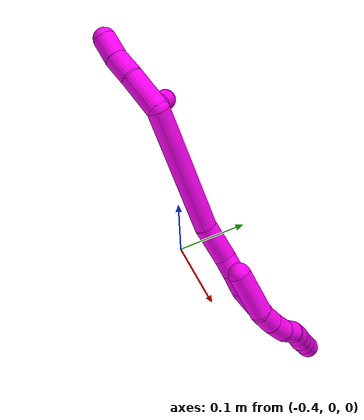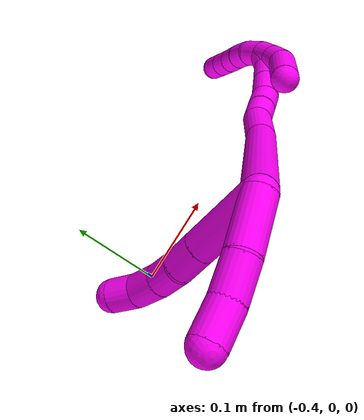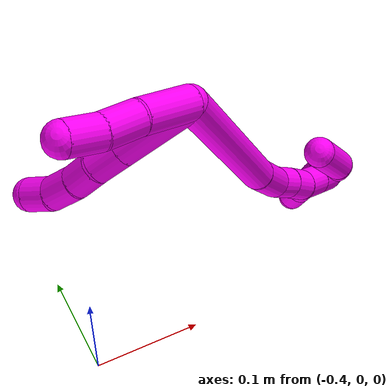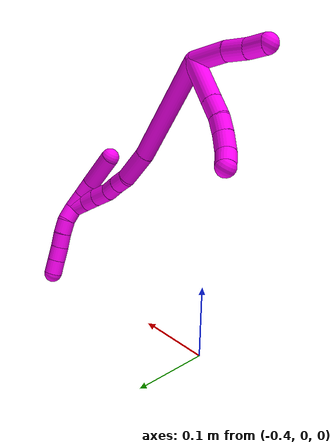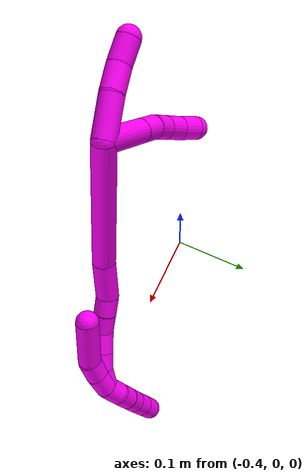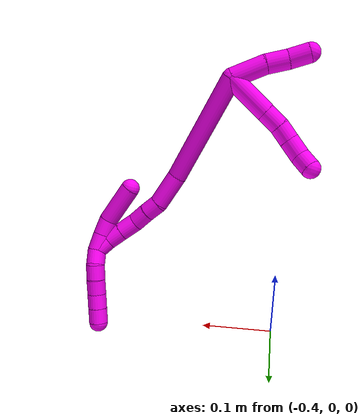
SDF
<sdf version="1.7">
 <world name="default">
  <model name="10">
   <static>0</static>
   <link name="10">
    <collision name="collision-cylinder-e_1_2_8">
     <pose>-0.0251 -0.009158 -0.013221 2.53582 -1.00095 -2.10337</pose>
     <geometry><cylinder><radius>0.0125</radius><length>0.059622</length></cylinder></geometry>
     <surface>
      <friction><ode><mu>1.16</mu><mu2>1.16</mu2><slip1>0</slip1><slip2>0</slip2></ode></friction>
      <contact><ode><kp>1e+06</kp><kd>1</kd><max_vel>0</max_vel><min_depth>0.001</min_depth></ode></contact>
     </surface>
    </collision>
    <visual name="visual-cylinder-e_1_2_8">
     <pose>-0.0251 -0.009158 -0.013221 2.53582 -1.00095 -2.10337</pose>
     <geometry><cylinder><radius>0.0125</radius><length>0.059622</length></cylinder></geometry>
     <material><ambient>1 0 0.964706 1</ambient></material>
    </visual>
    <collision name="collision-cylinder-e_2_8_9">
     <pose>-0.060249 -0.022036 -0.031706 2.52627 -1.00048 -2.08847</pose>
     <geometry><cylinder><radius>0.0125</radius><length>0.023876</length></cylinder></geometry>
     <surface>
      <friction><ode><mu>1.16</mu><mu2>1.16</mu2><slip1>0</slip1><slip2>0</slip2></ode></friction>
      <contact><ode><kp>1e+06</kp><kd>1</kd><max_vel>0</max_vel><min_depth>0.001</min_depth></ode></contact>
     </surface>
    </collision>
    <visual name="visual-cylinder-e_2_8_9">
     <pose>-0.060249 -0.022036 -0.031706 2.52627 -1.00048 -2.08847</pose>
     <geometry><cylinder><radius>0.0125</radius><length>0.023876</length></cylinder></geometry>
     <material><ambient>1 0 0.964706 1</ambient></material>
    </visual>
    <collision name="collision-cylinder-e_3_9_10">
     <pose>-0.078397 -0.02856 -0.043254 2.72203 -0.866467 -2.27881</pose>
     <geometry><cylinder><radius>0.0125</radius><length>0.021257</length></cylinder></geometry>
     <surface>
      <friction><ode><mu>1.16</mu><mu2>1.16</mu2><slip1>0</slip1><slip2>0</slip2></ode></friction>
      <contact><ode><kp>1e+06</kp><kd>1</kd><max_vel>0</max_vel><min_depth>0.001</min_depth></ode></contact>
     </surface>
    </collision>
    <visual name="visual-cylinder-e_3_9_10">
     <pose>-0.078397 -0.02856 -0.043254 2.72203 -0.866467 -2.27881</pose>
     <geometry><cylinder><radius>0.0125</radius><length>0.021257</length></cylinder></geometry>
     <material><ambient>1 0 0.964706 1</ambient></material>
    </visual>
    <collision name="collision-cylinder-e_4_10_11">
     <pose>-0.096204 -0.032869 -0.056686 2.93391 -0.92578 -2.72985</pose>
     <geometry><cylinder><radius>0.0125</radius><length>0.024296</length></cylinder></geometry>
     <surface>
      <friction><ode><mu>1.16</mu><mu2>1.16</mu2><slip1>0</slip1><slip2>0</slip2></ode></friction>
      <contact><ode><kp>1e+06</kp><kd>1</kd><max_vel>0</max_vel><min_depth>0.001</min_depth></ode></contact>
     </surface>
    </collision>
    <visual name="visual-cylinder-e_4_10_11">
     <pose>-0.096204 -0.032869 -0.056686 2.93391 -0.92578 -2.72985</pose>
     <geometry><cylinder><radius>0.0125</radius><length>0.024296</length></cylinder></geometry>
     <material><ambient>1 0 0.964706 1</ambient></material>
    </visual>
    <collision name="collision-cylinder-e_5_11_6">
     <pose>-0.114979 -0.032597 -0.068765 -2.79563 -1.0465 2.5534</pose>
     <geometry><cylinder><radius>0.0125</radius><length>0.020949</length></cylinder></geometry>
     <surface>
      <friction><ode><mu>1.16</mu><mu2>1.16</mu2><slip1>0</slip1><slip2>0</slip2></ode></friction>
      <contact><ode><kp>1e+06</kp><kd>1</kd><max_vel>0</max_vel><min_depth>0.001</min_depth></ode></contact>
     </surface>
    </collision>
    <visual name="visual-cylinder-e_5_11_6">
     <pose>-0.114979 -0.032597 -0.068765 -2.79563 -1.0465 2.5534</pose>
     <geometry><cylinder><radius>0.0125</radius><length>0.020949</length></cylinder></geometry>
     <material><ambient>1 0 0.964706 1</ambient></material>
    </visual>
    <collision name="collision-cylinder-e_1_2_12">
     <pose>-0.015589 -0.007119 0.014224 0.464034 -0.775323 -0.192355</pose>
     <geometry><cylinder><radius>0.0125</radius><length>0.044542</length></cylinder></geometry>
     <surface>
      <friction><ode><mu>1.16</mu><mu2>1.16</mu2><slip1>0</slip1><slip2>0</slip2></ode></friction>
      <contact><ode><kp>1e+06</kp><kd>1</kd><max_vel>0</max_vel><min_depth>0.001</min_depth></ode></contact>
     </surface>
    </collision>
    <visual name="visual-cylinder-e_1_2_12">
     <pose>-0.015589 -0.007119 0.014224 0.464034 -0.775323 -0.192355</pose>
     <geometry><cylinder><radius>0.0125</radius><length>0.044542</length></cylinder></geometry>
     <material><ambient>1 0 0.964706 1</ambient></material>
    </visual>
    <collision name="collision-cylinder-e_2_12_13">
     <pose>-0.042214 -0.0196 0.035609 0.6427 -0.889603 -0.314725</pose>
     <geometry><cylinder><radius>0.0125</radius><length>0.028415</length></cylinder></geometry>
     <surface>
      <friction><ode><mu>1.16</mu><mu2>1.16</mu2><slip1>0</slip1><slip2>0</slip2></ode></friction>
      <contact><ode><kp>1e+06</kp><kd>1</kd><max_vel>0</max_vel><min_depth>0.001</min_depth></ode></contact>
     </surface>
    </collision>
    <visual name="visual-cylinder-e_2_12_13">
     <pose>-0.042214 -0.0196 0.035609 0.6427 -0.889603 -0.314725</pose>
     <geometry><cylinder><radius>0.0125</radius><length>0.028415</length></cylinder></geometry>
     <material><ambient>1 0 0.964706 1</ambient></material>
    </visual>
    <collision name="collision-cylinder-e_3_13_5">
     <pose>-0.064077 -0.027985 0.050286 0.382473 -0.928478 -0.193285</pose>
     <geometry><cylinder><radius>0.0125</radius><length>0.027043</length></cylinder></geometry>
     <surface>
      <friction><ode><mu>1.16</mu><mu2>1.16</mu2><slip1>0</slip1><slip2>0</slip2></ode></friction>
      <contact><ode><kp>1e+06</kp><kd>1</kd><max_vel>0</max_vel><min_depth>0.001</min_depth></ode></contact>
     </surface>
    </collision>
    <visual name="visual-cylinder-e_3_13_5">
     <pose>-0.064077 -0.027985 0.050286 0.382473 -0.928478 -0.193285</pose>
     <geometry><cylinder><radius>0.0125</radius><length>0.027043</length></cylinder></geometry>
     <material><ambient>1 0 0.964706 1</ambient></material>
    </visual>
    <collision name="collision-cylinder-e_1_2_14">
     <pose>0.019578 -0.009556 -0.069459 3.00487 0.272303 2.21467</pose>
     <geometry><cylinder><radius>0.0125</radius><length>0.14559</length></cylinder></geometry>
     <surface>
      <friction><ode><mu>1.16</mu><mu2>1.16</mu2><slip1>0</slip1><slip2>0</slip2></ode></friction>
      <contact><ode><kp>1e+06</kp><kd>1</kd><max_vel>0</max_vel><min_depth>0.001</min_depth></ode></contact>
     </surface>
    </collision>
    <visual name="visual-cylinder-e_1_2_14">
     <pose>0.019578 -0.009556 -0.069459 3.00487 0.272303 2.21467</pose>
     <geometry><cylinder><radius>0.0125</radius><length>0.14559</length></cylinder></geometry>
     <material><ambient>1 0 0.964706 1</ambient></material>
    </visual>
    <collision name="collision-cylinder-e_2_14_15">
     <pose>0.045528 -0.018273 -0.160387 -3.10252 0.28829 -2.87397</pose>
     <geometry><cylinder><radius>0.0125</radius><length>0.044822</length></cylinder></geometry>
     <surface>
      <friction><ode><mu>1.16</mu><mu2>1.16</mu2><slip1>0</slip1><slip2>0</slip2></ode></friction>
      <contact><ode><kp>1e+06</kp><kd>1</kd><max_vel>0</max_vel><min_depth>0.001</min_depth></ode></contact>
     </surface>
    </collision>
    <visual name="visual-cylinder-e_2_14_15">
     <pose>0.045528 -0.018273 -0.160387 -3.10252 0.28829 -2.87397</pose>
     <geometry><cylinder><radius>0.0125</radius><length>0.044822</length></cylinder></geometry>
     <material><ambient>1 0 0.964706 1</ambient></material>
    </visual>
    <collision name="collision-cylinder-e_3_15_16">
     <pose>0.057756 -0.016457 -0.190428 -3.02818 0.596318 -2.77626</pose>
     <geometry><cylinder><radius>0.0125</radius><length>0.020854</length></cylinder></geometry>
     <surface>
      <friction><ode><mu>1.16</mu><mu2>1.16</mu2><slip1>0</slip1><slip2>0</slip2></ode></friction>
      <contact><ode><kp>1e+06</kp><kd>1</kd><max_vel>0</max_vel><min_depth>0.001</min_depth></ode></contact>
     </surface>
    </collision>
    <visual name="visual-cylinder-e_3_15_16">
     <pose>0.057756 -0.016457 -0.190428 -3.02818 0.596318 -2.77626</pose>
     <geometry><cylinder><radius>0.0125</radius><length>0.020854</length></cylinder></geometry>
     <material><ambient>1 0 0.964706 1</ambient></material>
    </visual>
    <collision name="collision-cylinder-e_4_16_17">
     <pose>0.069549 -0.015006 -0.208414 -3.09122 0.562179 -2.96755</pose>
     <geometry><cylinder><radius>0.0125</radius><length>0.02228</length></cylinder></geometry>
     <surface>
      <friction><ode><mu>1.16</mu><mu2>1.16</mu2><slip1>0</slip1><slip2>0</slip2></ode></friction>
      <contact><ode><kp>1e+06</kp><kd>1</kd><max_vel>0</max_vel><min_depth>0.001</min_depth></ode></contact>
     </surface>
    </collision>
    <visual name="visual-cylinder-e_4_16_17">
     <pose>0.069549 -0.015006 -0.208414 -3.09122 0.562179 -2.96755</pose>
     <geometry><cylinder><radius>0.0125</radius><length>0.02228</length></cylinder></geometry>
     <material><ambient>1 0 0.964706 1</ambient></material>
    </visual>
    <collision name="collision-cylinder-e_5_17_18">
     <pose>0.081922 -0.010952 -0.227279 -2.77951 0.566935 -2.01958</pose>
     <geometry><cylinder><radius>0.0125</radius><length>0.023964</length></cylinder></geometry>
     <surface>
      <friction><ode><mu>1.16</mu><mu2>1.16</mu2><slip1>0</slip1><slip2>0</slip2></ode></friction>
      <contact><ode><kp>1e+06</kp><kd>1</kd><max_vel>0</max_vel><min_depth>0.001</min_depth></ode></contact>
     </surface>
    </collision>
    <visual name="visual-cylinder-e_5_17_18">
     <pose>0.081922 -0.010952 -0.227279 -2.77951 0.566935 -2.01958</pose>
     <geometry><cylinder><radius>0.0125</radius><length>0.023964</length></cylinder></geometry>
     <material><ambient>1 0 0.964706 1</ambient></material>
    </visual>
    <collision name="collision-cylinder-e_6_18_19">
     <pose>0.094054 -0.004034 -0.245441 -2.77572 0.548294 -1.97786</pose>
     <geometry><cylinder><radius>0.0125</radius><length>0.021859</length></cylinder></geometry>
     <surface>
      <friction><ode><mu>1.16</mu><mu2>1.16</mu2><slip1>0</slip1><slip2>0</slip2></ode></friction>
      <contact><ode><kp>1e+06</kp><kd>1</kd><max_vel>0</max_vel><min_depth>0.001</min_depth></ode></contact>
     </surface>
    </collision>
    <visual name="visual-cylinder-e_6_18_19">
     <pose>0.094054 -0.004034 -0.245441 -2.77572 0.548294 -1.97786</pose>
     <geometry><cylinder><radius>0.0125</radius><length>0.021859</length></cylinder></geometry>
     <material><ambient>1 0 0.964706 1</ambient></material>
    </visual>
    <collision name="collision-cylinder-e_7_19_1">
     <pose>0.103161 0.004143 -0.262598 -2.62128 0.336959 -1.1372</pose>
     <geometry><cylinder><radius>0.0125</radius><length>0.020632</length></cylinder></geometry>
     <surface>
      <friction><ode><mu>1.16</mu><mu2>1.16</mu2><slip1>0</slip1><slip2>0</slip2></ode></friction>
      <contact><ode><kp>1e+06</kp><kd>1</kd><max_vel>0</max_vel><min_depth>0.001</min_depth></ode></contact>
     </surface>
    </collision>
    <visual name="visual-cylinder-e_7_19_1">
     <pose>0.103161 0.004143 -0.262598 -2.62128 0.336959 -1.1372</pose>
     <geometry><cylinder><radius>0.0125</radius><length>0.020632</length></cylinder></geometry>
     <material><ambient>1 0 0.964706 1</ambient></material>
    </visual>
    <collision name="collision-cylinder-e_1_1_20">
     <pose>0.10278 0.011429 -0.27997 -2.87409 -0.388932 1.94292</pose>
     <geometry><cylinder><radius>0.0125</radius><length>0.02</length></cylinder></geometry>
     <surface>
      <friction><ode><mu>1.16</mu><mu2>1.16</mu2><slip1>0</slip1><slip2>0</slip2></ode></friction>
      <contact><ode><kp>1e+06</kp><kd>1</kd><max_vel>0</max_vel><min_depth>0.001</min_depth></ode></contact>
     </surface>
    </collision>
    <visual name="visual-cylinder-e_1_1_20">
     <pose>0.10278 0.011429 -0.27997 -2.87409 -0.388932 1.94292</pose>
     <geometry><cylinder><radius>0.0125</radius><length>0.02</length></cylinder></geometry>
     <material><ambient>1 0 0.964706 1</ambient></material>
    </visual>
    <collision name="collision-cylinder-e_2_20_21">
     <pose>0.095532 0.013471 -0.298269 3.0986 -0.352812 -2.90156</pose>
     <geometry><cylinder><radius>0.0125</radius><length>0.02</length></cylinder></geometry>
     <surface>
      <friction><ode><mu>1.16</mu><mu2>1.16</mu2><slip1>0</slip1><slip2>0</slip2></ode></friction>
      <contact><ode><kp>1e+06</kp><kd>1</kd><max_vel>0</max_vel><min_depth>0.001</min_depth></ode></contact>
     </surface>
    </collision>
    <visual name="visual-cylinder-e_2_20_21">
     <pose>0.095532 0.013471 -0.298269 3.0986 -0.352812 -2.90156</pose>
     <geometry><cylinder><radius>0.0125</radius><length>0.02</length></cylinder></geometry>
     <material><ambient>1 0 0.964706 1</ambient></material>
    </visual>
    <collision name="collision-cylinder-e_3_21_22">
     <pose>0.088859 0.011635 -0.317004 2.98966 -0.327616 -2.27854</pose>
     <geometry><cylinder><radius>0.0125</radius><length>0.02</length></cylinder></geometry>
     <surface>
      <friction><ode><mu>1.16</mu><mu2>1.16</mu2><slip1>0</slip1><slip2>0</slip2></ode></friction>
      <contact><ode><kp>1e+06</kp><kd>1</kd><max_vel>0</max_vel><min_depth>0.001</min_depth></ode></contact>
     </surface>
    </collision>
    <visual name="visual-cylinder-e_3_21_22">
     <pose>0.088859 0.011635 -0.317004 2.98966 -0.327616 -2.27854</pose>
     <geometry><cylinder><radius>0.0125</radius><length>0.02</length></cylinder></geometry>
     <material><ambient>1 0 0.964706 1</ambient></material>
    </visual>
    <collision name="collision-cylinder-e_4_22_23">
     <pose>0.082038 0.009411 -0.335658 3.05672 -0.368603 -2.69367</pose>
     <geometry><cylinder><radius>0.0125</radius><length>0.02</length></cylinder></geometry>
     <surface>
      <friction><ode><mu>1.16</mu><mu2>1.16</mu2><slip1>0</slip1><slip2>0</slip2></ode></friction>
      <contact><ode><kp>1e+06</kp><kd>1</kd><max_vel>0</max_vel><min_depth>0.001</min_depth></ode></contact>
     </surface>
    </collision>
    <visual name="visual-cylinder-e_4_22_23">
     <pose>0.082038 0.009411 -0.335658 3.05672 -0.368603 -2.69367</pose>
     <geometry><cylinder><radius>0.0125</radius><length>0.02</length></cylinder></geometry>
     <material><ambient>1 0 0.964706 1</ambient></material>
    </visual>
    <collision name="collision-cylinder-e_5_23_4">
     <pose>0.074853 0.007783 -0.354251 3.05176 -0.366403 -2.66562</pose>
     <geometry><cylinder><radius>0.0125</radius><length>0.02</length></cylinder></geometry>
     <surface>
      <friction><ode><mu>1.16</mu><mu2>1.16</mu2><slip1>0</slip1><slip2>0</slip2></ode></friction>
      <contact><ode><kp>1e+06</kp><kd>1</kd><max_vel>0</max_vel><min_depth>0.001</min_depth></ode></contact>
     </surface>
    </collision>
    <visual name="visual-cylinder-e_5_23_4">
     <pose>0.074853 0.007783 -0.354251 3.05176 -0.366403 -2.66562</pose>
     <geometry><cylinder><radius>0.0125</radius><length>0.02</length></cylinder></geometry>
     <material><ambient>1 0 0.964706 1</ambient></material>
    </visual>
    <collision name="collision-cylinder-e_1_1_24">
     <pose>0.107532 0.006638 -0.259936 0.20799 0.084344 0.008808</pose>
     <geometry><cylinder><radius>0.0125</radius><length>0.02279</length></cylinder></geometry>
     <surface>
      <friction><ode><mu>1.16</mu><mu2>1.16</mu2><slip1>0</slip1><slip2>0</slip2></ode></friction>
      <contact><ode><kp>1e+06</kp><kd>1</kd><max_vel>0</max_vel><min_depth>0.001</min_depth></ode></contact>
     </surface>
    </collision>
    <visual name="visual-cylinder-e_1_1_24">
     <pose>0.107532 0.006638 -0.259936 0.20799 0.084344 0.008808</pose>
     <geometry><cylinder><radius>0.0125</radius><length>0.02279</length></cylinder></geometry>
     <material><ambient>1 0 0.964706 1</ambient></material>
    </visual>
    <collision name="collision-cylinder-e_2_24_25">
     <pose>0.108294 0.00271 -0.237652 0.140782 -0.017555 -0.001238</pose>
     <geometry><cylinder><radius>0.0125</radius><length>0.022575</length></cylinder></geometry>
     <surface>
      <friction><ode><mu>1.16</mu><mu2>1.16</mu2><slip1>0</slip1><slip2>0</slip2></ode></friction>
      <contact><ode><kp>1e+06</kp><kd>1</kd><max_vel>0</max_vel><min_depth>0.001</min_depth></ode></contact>
     </surface>
    </collision>
    <visual name="visual-cylinder-e_2_24_25">
     <pose>0.108294 0.00271 -0.237652 0.140782 -0.017555 -0.001238</pose>
     <geometry><cylinder><radius>0.0125</radius><length>0.022575</length></cylinder></geometry>
     <material><ambient>1 0 0.964706 1</ambient></material>
    </visual>
    <collision name="collision-cylinder-e_3_25_3">
     <pose>0.099255 0.000988 -0.200631 0.005352 -0.329565 -0.00089</pose>
     <geometry><cylinder><radius>0.0125</radius><length>0.054635</length></cylinder></geometry>
     <surface>
      <friction><ode><mu>1.16</mu><mu2>1.16</mu2><slip1>0</slip1><slip2>0</slip2></ode></friction>
      <contact><ode><kp>1e+06</kp><kd>1</kd><max_vel>0</max_vel><min_depth>0.001</min_depth></ode></contact>
     </surface>
    </collision>
    <visual name="visual-cylinder-e_3_25_3">
     <pose>0.099255 0.000988 -0.200631 0.005352 -0.329565 -0.00089</pose>
     <geometry><cylinder><radius>0.0125</radius><length>0.054635</length></cylinder></geometry>
     <material><ambient>1 0 0.964706 1</ambient></material>
    </visual>
    <collision name="collision-sphere-3">
     <pose>0.090414 0.00085 -0.174784 0 -0 0</pose>
     <geometry><sphere><radius>0.0125</radius></sphere></geometry>
     <surface>
      <friction><ode><mu>1.16</mu><mu2>1.16</mu2><slip1>0</slip1><slip2>0</slip2></ode></friction>
      <contact><ode><kp>1e+06</kp><kd>1</kd><max_vel>0</max_vel><min_depth>0.001</min_depth></ode></contact>
     </surface>
    </collision>
    <visual name="visual-sphere-3">
     <pose>0.090414 0.00085 -0.174784 0 -0 0</pose>
     <geometry><sphere><radius>0.0125</radius></sphere></geometry>
     <material><ambient>1 0 0.964706 1</ambient></material>
    </visual>
    <collision name="collision-sphere-25">
     <pose>0.108095 0.001127 -0.226478 0 -0 0</pose>
     <geometry><sphere><radius>0.0125</radius></sphere></geometry>
     <surface>
      <friction><ode><mu>1.16</mu><mu2>1.16</mu2><slip1>0</slip1><slip2>0</slip2></ode></friction>
      <contact><ode><kp>1e+06</kp><kd>1</kd><max_vel>0</max_vel><min_depth>0.001</min_depth></ode></contact>
     </surface>
    </collision>
    <visual name="visual-sphere-25">
     <pose>0.108095 0.001127 -0.226478 0 -0 0</pose>
     <geometry><sphere><radius>0.0125</radius></sphere></geometry>
     <material><ambient>1 0 0.964706 1</ambient></material>
    </visual>
    <collision name="collision-sphere-24">
     <pose>0.108492 0.004294 -0.248827 0 -0 0</pose>
     <geometry><sphere><radius>0.0125</radius></sphere></geometry>
     <surface>
      <friction><ode><mu>1.16</mu><mu2>1.16</mu2><slip1>0</slip1><slip2>0</slip2></ode></friction>
      <contact><ode><kp>1e+06</kp><kd>1</kd><max_vel>0</max_vel><min_depth>0.001</min_depth></ode></contact>
     </surface>
    </collision>
    <visual name="visual-sphere-24">
     <pose>0.108492 0.004294 -0.248827 0 -0 0</pose>
     <geometry><sphere><radius>0.0125</radius></sphere></geometry>
     <material><ambient>1 0 0.964706 1</ambient></material>
    </visual>
    <collision name="collision-sphere-4">
     <pose>0.07127 0.006945 -0.363549 0 -0 0</pose>
     <geometry><sphere><radius>0.0125</radius></sphere></geometry>
     <surface>
      <friction><ode><mu>1.16</mu><mu2>1.16</mu2><slip1>0</slip1><slip2>0</slip2></ode></friction>
      <contact><ode><kp>1e+06</kp><kd>1</kd><max_vel>0</max_vel><min_depth>0.001</min_depth></ode></contact>
     </surface>
    </collision>
    <visual name="visual-sphere-4">
     <pose>0.07127 0.006945 -0.363549 0 -0 0</pose>
     <geometry><sphere><radius>0.0125</radius></sphere></geometry>
     <material><ambient>1 0 0.964706 1</ambient></material>
    </visual>
    <collision name="collision-sphere-23">
     <pose>0.078435 0.008621 -0.344952 0 -0 0</pose>
     <geometry><sphere><radius>0.0125</radius></sphere></geometry>
     <surface>
      <friction><ode><mu>1.16</mu><mu2>1.16</mu2><slip1>0</slip1><slip2>0</slip2></ode></friction>
      <contact><ode><kp>1e+06</kp><kd>1</kd><max_vel>0</max_vel><min_depth>0.001</min_depth></ode></contact>
     </surface>
    </collision>
    <visual name="visual-sphere-23">
     <pose>0.078435 0.008621 -0.344952 0 -0 0</pose>
     <geometry><sphere><radius>0.0125</radius></sphere></geometry>
     <material><ambient>1 0 0.964706 1</ambient></material>
    </visual>
    <collision name="collision-sphere-22">
     <pose>0.085641 0.010202 -0.326363 0 -0 0</pose>
     <geometry><sphere><radius>0.0125</radius></sphere></geometry>
     <surface>
      <friction><ode><mu>1.16</mu><mu2>1.16</mu2><slip1>0</slip1><slip2>0</slip2></ode></friction>
      <contact><ode><kp>1e+06</kp><kd>1</kd><max_vel>0</max_vel><min_depth>0.001</min_depth></ode></contact>
     </surface>
    </collision>
    <visual name="visual-sphere-22">
     <pose>0.085641 0.010202 -0.326363 0 -0 0</pose>
     <geometry><sphere><radius>0.0125</radius></sphere></geometry>
     <material><ambient>1 0 0.964706 1</ambient></material>
    </visual>
    <collision name="collision-sphere-21">
     <pose>0.092077 0.013068 -0.307645 0 -0 0</pose>
     <geometry><sphere><radius>0.0125</radius></sphere></geometry>
     <surface>
      <friction><ode><mu>1.16</mu><mu2>1.16</mu2><slip1>0</slip1><slip2>0</slip2></ode></friction>
      <contact><ode><kp>1e+06</kp><kd>1</kd><max_vel>0</max_vel><min_depth>0.001</min_depth></ode></contact>
     </surface>
    </collision>
    <visual name="visual-sphere-21">
     <pose>0.092077 0.013068 -0.307645 0 -0 0</pose>
     <geometry><sphere><radius>0.0125</radius></sphere></geometry>
     <material><ambient>1 0 0.964706 1</ambient></material>
    </visual>
    <collision name="collision-sphere-20">
     <pose>0.098988 0.013875 -0.288894 0 -0 0</pose>
     <geometry><sphere><radius>0.0125</radius></sphere></geometry>
     <surface>
      <friction><ode><mu>1.16</mu><mu2>1.16</mu2><slip1>0</slip1><slip2>0</slip2></ode></friction>
      <contact><ode><kp>1e+06</kp><kd>1</kd><max_vel>0</max_vel><min_depth>0.001</min_depth></ode></contact>
     </surface>
    </collision>
    <visual name="visual-sphere-20">
     <pose>0.098988 0.013875 -0.288894 0 -0 0</pose>
     <geometry><sphere><radius>0.0125</radius></sphere></geometry>
     <material><ambient>1 0 0.964706 1</ambient></material>
    </visual>
    <collision name="collision-sphere-6">
     <pose>-0.124047 -0.030819 -0.073698 0 -0 0</pose>
     <geometry><sphere><radius>0.0125</radius></sphere></geometry>
     <surface>
      <friction><ode><mu>1.16</mu><mu2>1.16</mu2><slip1>0</slip1><slip2>0</slip2></ode></friction>
      <contact><ode><kp>1e+06</kp><kd>1</kd><max_vel>0</max_vel><min_depth>0.001</min_depth></ode></contact>
     </surface>
    </collision>
    <visual name="visual-sphere-6">
     <pose>-0.124047 -0.030819 -0.073698 0 -0 0</pose>
     <geometry><sphere><radius>0.0125</radius></sphere></geometry>
     <material><ambient>1 0 0.964706 1</ambient></material>
    </visual>
    <collision name="collision-sphere-11">
     <pose>-0.105911 -0.034375 -0.063833 0 -0 0</pose>
     <geometry><sphere><radius>0.0125</radius></sphere></geometry>
     <surface>
      <friction><ode><mu>1.16</mu><mu2>1.16</mu2><slip1>0</slip1><slip2>0</slip2></ode></friction>
      <contact><ode><kp>1e+06</kp><kd>1</kd><max_vel>0</max_vel><min_depth>0.001</min_depth></ode></contact>
     </surface>
    </collision>
    <visual name="visual-sphere-11">
     <pose>-0.105911 -0.034375 -0.063833 0 -0 0</pose>
     <geometry><sphere><radius>0.0125</radius></sphere></geometry>
     <material><ambient>1 0 0.964706 1</ambient></material>
    </visual>
    <collision name="collision-sphere-10">
     <pose>-0.086497 -0.031363 -0.04954 0 -0 0</pose>
     <geometry><sphere><radius>0.0125</radius></sphere></geometry>
     <surface>
      <friction><ode><mu>1.16</mu><mu2>1.16</mu2><slip1>0</slip1><slip2>0</slip2></ode></friction>
      <contact><ode><kp>1e+06</kp><kd>1</kd><max_vel>0</max_vel><min_depth>0.001</min_depth></ode></contact>
     </surface>
    </collision>
    <visual name="visual-sphere-10">
     <pose>-0.086497 -0.031363 -0.04954 0 -0 0</pose>
     <geometry><sphere><radius>0.0125</radius></sphere></geometry>
     <material><ambient>1 0 0.964706 1</ambient></material>
    </visual>
    <collision name="collision-sphere-9">
     <pose>-0.070298 -0.025756 -0.036969 0 -0 0</pose>
     <geometry><sphere><radius>0.0125</radius></sphere></geometry>
     <surface>
      <friction><ode><mu>1.16</mu><mu2>1.16</mu2><slip1>0</slip1><slip2>0</slip2></ode></friction>
      <contact><ode><kp>1e+06</kp><kd>1</kd><max_vel>0</max_vel><min_depth>0.001</min_depth></ode></contact>
     </surface>
    </collision>
    <visual name="visual-sphere-9">
     <pose>-0.070298 -0.025756 -0.036969 0 -0 0</pose>
     <geometry><sphere><radius>0.0125</radius></sphere></geometry>
     <material><ambient>1 0 0.964706 1</ambient></material>
    </visual>
    <collision name="collision-sphere-2">
     <geometry><sphere><radius>0.0125</radius></sphere></geometry>
     <surface>
      <friction><ode><mu>1.16</mu><mu2>1.16</mu2><slip1>0</slip1><slip2>0</slip2></ode></friction>
      <contact><ode><kp>1e+06</kp><kd>1</kd><max_vel>0</max_vel><min_depth>0.001</min_depth></ode></contact>
     </surface>
    </collision>
    <visual name="visual-sphere-2">
     <geometry><sphere><radius>0.0125</radius></sphere></geometry>
     <material><ambient>1 0 0.964706 1</ambient></material>
    </visual>
    <collision name="collision-sphere-19">
     <pose>0.099751 -0.000697 -0.254151 0 -0 0</pose>
     <geometry><sphere><radius>0.0125</radius></sphere></geometry>
     <surface>
      <friction><ode><mu>1.16</mu><mu2>1.16</mu2><slip1>0</slip1><slip2>0</slip2></ode></friction>
      <contact><ode><kp>1e+06</kp><kd>1</kd><max_vel>0</max_vel><min_depth>0.001</min_depth></ode></contact>
     </surface>
    </collision>
    <visual name="visual-sphere-19">
     <pose>0.099751 -0.000697 -0.254151 0 -0 0</pose>
     <geometry><sphere><radius>0.0125</radius></sphere></geometry>
     <material><ambient>1 0 0.964706 1</ambient></material>
    </visual>
    <collision name="collision-sphere-8">
     <pose>-0.050201 -0.018315 -0.026443 0 -0 0</pose>
     <geometry><sphere><radius>0.0125</radius></sphere></geometry>
     <surface>
      <friction><ode><mu>1.16</mu><mu2>1.16</mu2><slip1>0</slip1><slip2>0</slip2></ode></friction>
      <contact><ode><kp>1e+06</kp><kd>1</kd><max_vel>0</max_vel><min_depth>0.001</min_depth></ode></contact>
     </surface>
    </collision>
    <visual name="visual-sphere-8">
     <pose>-0.050201 -0.018315 -0.026443 0 -0 0</pose>
     <geometry><sphere><radius>0.0125</radius></sphere></geometry>
     <material><ambient>1 0 0.964706 1</ambient></material>
    </visual>
    <collision name="collision-sphere-12">
     <pose>-0.031177 -0.014238 0.028448 0 -0 0</pose>
     <geometry><sphere><radius>0.0125</radius></sphere></geometry>
     <surface>
      <friction><ode><mu>1.16</mu><mu2>1.16</mu2><slip1>0</slip1><slip2>0</slip2></ode></friction>
      <contact><ode><kp>1e+06</kp><kd>1</kd><max_vel>0</max_vel><min_depth>0.001</min_depth></ode></contact>
     </surface>
    </collision>
    <visual name="visual-sphere-12">
     <pose>-0.031177 -0.014238 0.028448 0 -0 0</pose>
     <geometry><sphere><radius>0.0125</radius></sphere></geometry>
     <material><ambient>1 0 0.964706 1</ambient></material>
    </visual>
    <collision name="collision-sphere-13">
     <pose>-0.05325 -0.024962 0.042771 0 -0 0</pose>
     <geometry><sphere><radius>0.0125</radius></sphere></geometry>
     <surface>
      <friction><ode><mu>1.16</mu><mu2>1.16</mu2><slip1>0</slip1><slip2>0</slip2></ode></friction>
      <contact><ode><kp>1e+06</kp><kd>1</kd><max_vel>0</max_vel><min_depth>0.001</min_depth></ode></contact>
     </surface>
    </collision>
    <visual name="visual-sphere-13">
     <pose>-0.05325 -0.024962 0.042771 0 -0 0</pose>
     <geometry><sphere><radius>0.0125</radius></sphere></geometry>
     <material><ambient>1 0 0.964706 1</ambient></material>
    </visual>
    <collision name="collision-sphere-5">
     <pose>-0.074904 -0.031008 0.057801 0 -0 0</pose>
     <geometry><sphere><radius>0.0125</radius></sphere></geometry>
     <surface>
      <friction><ode><mu>1.16</mu><mu2>1.16</mu2><slip1>0</slip1><slip2>0</slip2></ode></friction>
      <contact><ode><kp>1e+06</kp><kd>1</kd><max_vel>0</max_vel><min_depth>0.001</min_depth></ode></contact>
     </surface>
    </collision>
    <visual name="visual-sphere-5">
     <pose>-0.074904 -0.031008 0.057801 0 -0 0</pose>
     <geometry><sphere><radius>0.0125</radius></sphere></geometry>
     <material><ambient>1 0 0.964706 1</ambient></material>
    </visual>
    <collision name="collision-sphere-14">
     <pose>0.039157 -0.019112 -0.138917 0 -0 0</pose>
     <geometry><sphere><radius>0.0125</radius></sphere></geometry>
     <surface>
      <friction><ode><mu>1.16</mu><mu2>1.16</mu2><slip1>0</slip1><slip2>0</slip2></ode></friction>
      <contact><ode><kp>1e+06</kp><kd>1</kd><max_vel>0</max_vel><min_depth>0.001</min_depth></ode></contact>
     </surface>
    </collision>
    <visual name="visual-sphere-14">
     <pose>0.039157 -0.019112 -0.138917 0 -0 0</pose>
     <geometry><sphere><radius>0.0125</radius></sphere></geometry>
     <material><ambient>1 0 0.964706 1</ambient></material>
    </visual>
    <collision name="collision-sphere-15">
     <pose>0.0519 -0.017434 -0.181856 0 -0 0</pose>
     <geometry><sphere><radius>0.0125</radius></sphere></geometry>
     <surface>
      <friction><ode><mu>1.16</mu><mu2>1.16</mu2><slip1>0</slip1><slip2>0</slip2></ode></friction>
      <contact><ode><kp>1e+06</kp><kd>1</kd><max_vel>0</max_vel><min_depth>0.001</min_depth></ode></contact>
     </surface>
    </collision>
    <visual name="visual-sphere-15">
     <pose>0.0519 -0.017434 -0.181856 0 -0 0</pose>
     <geometry><sphere><radius>0.0125</radius></sphere></geometry>
     <material><ambient>1 0 0.964706 1</ambient></material>
    </visual>
    <collision name="collision-sphere-16">
     <pose>0.063612 -0.015481 -0.199 0 -0 0</pose>
     <geometry><sphere><radius>0.0125</radius></sphere></geometry>
     <surface>
      <friction><ode><mu>1.16</mu><mu2>1.16</mu2><slip1>0</slip1><slip2>0</slip2></ode></friction>
      <contact><ode><kp>1e+06</kp><kd>1</kd><max_vel>0</max_vel><min_depth>0.001</min_depth></ode></contact>
     </surface>
    </collision>
    <visual name="visual-sphere-16">
     <pose>0.063612 -0.015481 -0.199 0 -0 0</pose>
     <geometry><sphere><radius>0.0125</radius></sphere></geometry>
     <material><ambient>1 0 0.964706 1</ambient></material>
    </visual>
    <collision name="collision-sphere-17">
     <pose>0.075487 -0.014532 -0.217827 0 -0 0</pose>
     <geometry><sphere><radius>0.0125</radius></sphere></geometry>
     <surface>
      <friction><ode><mu>1.16</mu><mu2>1.16</mu2><slip1>0</slip1><slip2>0</slip2></ode></friction>
      <contact><ode><kp>1e+06</kp><kd>1</kd><max_vel>0</max_vel><min_depth>0.001</min_depth></ode></contact>
     </surface>
    </collision>
    <visual name="visual-sphere-17">
     <pose>0.075487 -0.014532 -0.217827 0 -0 0</pose>
     <geometry><sphere><radius>0.0125</radius></sphere></geometry>
     <material><ambient>1 0 0.964706 1</ambient></material>
    </visual>
    <collision name="collision-sphere-18">
     <pose>0.088357 -0.007371 -0.236731 0 -0 0</pose>
     <geometry><sphere><radius>0.0125</radius></sphere></geometry>
     <surface>
      <friction><ode><mu>1.16</mu><mu2>1.16</mu2><slip1>0</slip1><slip2>0</slip2></ode></friction>
      <contact><ode><kp>1e+06</kp><kd>1</kd><max_vel>0</max_vel><min_depth>0.001</min_depth></ode></contact>
     </surface>
    </collision>
    <visual name="visual-sphere-18">
     <pose>0.088357 -0.007371 -0.236731 0 -0 0</pose>
     <geometry><sphere><radius>0.0125</radius></sphere></geometry>
     <material><ambient>1 0 0.964706 1</ambient></material>
    </visual>
    <collision name="collision-sphere-1">
     <pose>0.106572 0.008983 -0.271046 0 -0 0</pose>
     <geometry><sphere><radius>0.0125</radius></sphere></geometry>
     <surface>
      <friction><ode><mu>1.16</mu><mu2>1.16</mu2><slip1>0</slip1><slip2>0</slip2></ode></friction>
      <contact><ode><kp>1e+06</kp><kd>1</kd><max_vel>0</max_vel><min_depth>0.001</min_depth></ode></contact>
     </surface>
    </collision>
    <visual name="visual-sphere-1">
     <pose>0.106572 0.008983 -0.271046 0 -0 0</pose>
     <geometry><sphere><radius>0.0125</radius></sphere></geometry>
     <material><ambient>1 0 0.964706 1</ambient></material>
    </visual>
    <inertial>
     <pose>0.02669 -0.008805 -0.131168 0 -0 0</pose>
     <mass>0.75</mass>
     <inertia><ixx>2e-05</ixx><ixy>0</ixy><ixz>0</ixz><iyy>0.000416</iyy><iyz>0</iyz><izz>-1.4e-05</izz></inertia>
    </inertial>
   </link>
   <pose>-0.327218 -0.046514 0.357836 0.459387 -0.11195 -0.404998</pose>
  </model>
 </world>
</sdf>
